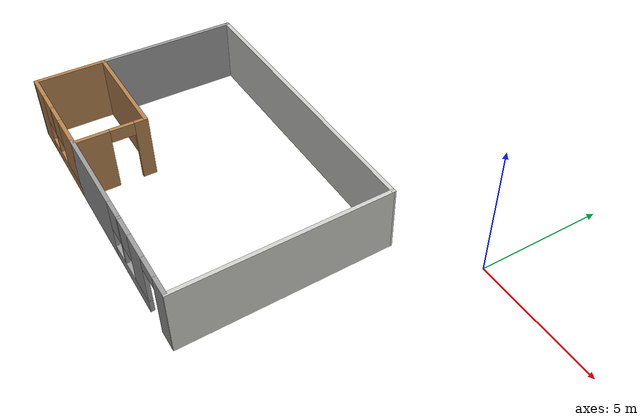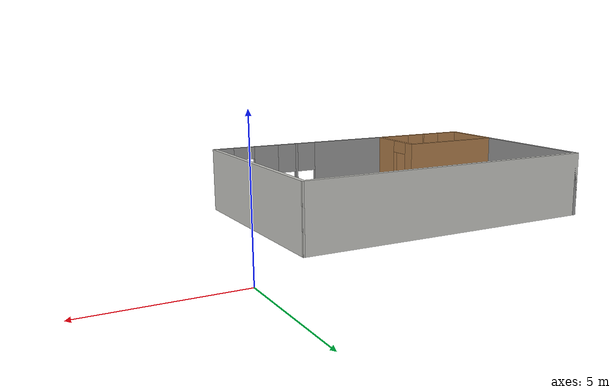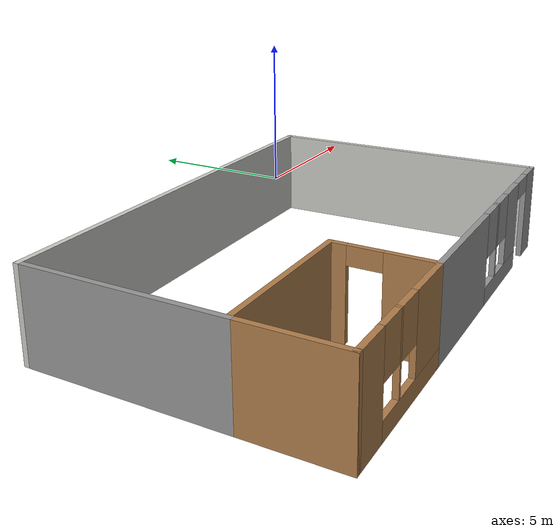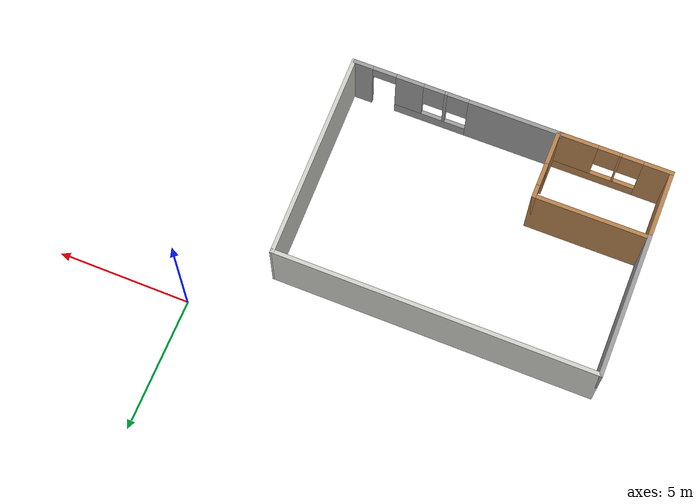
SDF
<?xml version='1.0'?>
<sdf version='1.6'>
  <model name='room'>
    <pose frame=''>-8.3326 -6.01419 0 0 -0 0</pose>
    <link name='Wall_0'>
      <collision name='Wall_0_Collision'>
        <geometry>
          <box>
            <size>11.97 0.15 2.5</size>
          </box>
        </geometry>
        <pose frame=''>0 0 1.25 0 -0 0</pose>
      </collision>
      <visual name='Wall_0_Visual'>
        <pose frame=''>0 0 1.25 0 -0 0</pose>
        <geometry>
          <box>
            <size>11.97 0.15 2.5</size>
          </box>
        </geometry>
        <material>
          <script>
            <uri>file://media/materials/scripts/gazebo.material</uri>
            <name>Gazebo/CeilingTiled</name>
          </script>
          <ambient>1 1 1 1</ambient>
        </material>
        <meta>
          <layer>0</layer>
        </meta>
      </visual>
      <pose frame=''>-0.097397 3.97419 0 0 -0 0</pose>
    </link>
    <link name='Wall_1'>
      <collision name='Wall_1_Collision'>
        <geometry>
          <box>
            <size>8.1 0.15 2.5</size>
          </box>
        </geometry>
        <pose frame=''>0 0 1.25 0 -0 0</pose>
      </collision>
      <visual name='Wall_1_Visual'>
        <pose frame=''>0 0 1.25 0 -0 0</pose>
        <geometry>
          <box>
            <size>8.1 0.15 2.5</size>
          </box>
        </geometry>
        <material>
          <script>
            <uri>file://media/materials/scripts/gazebo.material</uri>
            <name>Gazebo/CeilingTiled</name>
          </script>
          <ambient>1 1 1 1</ambient>
        </material>
        <meta>
          <layer>0</layer>
        </meta>
      </visual>
      <pose frame=''>5.9091 0.000186 0 0 0 -1.54652</pose>
    </link>
    <link name='Wall_21'>
      <collision name='Wall_21_Collision'>
        <geometry>
          <box>
            <size>5.5 0.15 2.5</size>
          </box>
        </geometry>
        <pose frame=''>0 0 1.25 0 -0 0</pose>
      </collision>
      <visual name='Wall_21_Visual'>
        <pose frame=''>0 0 1.25 0 -0 0</pose>
        <geometry>
          <box>
            <size>5.5 0.15 2.5</size>
          </box>
        </geometry>
        <material>
          <script>
            <uri>file://media/materials/scripts/gazebo.material</uri>
            <name>Gazebo/Grey</name>
          </script>
          <ambient>1 1 1 1</ambient>
        </material>
        <meta>
          <layer>0</layer>
        </meta>
      </visual>
      <pose frame=''>-6.0074 1.29919 0 0 0 -1.5708</pose>
    </link>
    <link name='Wall_22'>
      <collision name='Wall_22_Collision'>
        <geometry>
          <box>
            <size>2.75 0.15 2.5</size>
          </box>
        </geometry>
        <pose frame=''>0 0 1.25 0 -0 0</pose>
      </collision>
      <visual name='Wall_22_Visual'>
        <pose frame=''>0 0 1.25 0 -0 0</pose>
        <geometry>
          <box>
            <size>2.75 0.15 2.5</size>
          </box>
        </geometry>
        <material>
          <script>
            <uri>file://media/materials/scripts/gazebo.material</uri>
            <name>Gazebo/Wood</name>
          </script>
          <ambient>1 1 1 1</ambient>
        </material>
        <meta>
          <layer>0</layer>
        </meta>
      </visual>
      <pose frame=''>-6.0074 -2.67581 0 0 0 -1.5708</pose>
    </link>
    <link name='Wall_23'>
      <pose frame=''>-3.9574 -3.97581 0 0 -0 0</pose>
      <visual name='Wall_23_Visual_0'>
        <pose frame=''>-1.5675 0 1.25 0 -0 0</pose>
        <geometry>
          <box>
            <size>1.115 0.15 2.5</size>
          </box>
        </geometry>
        <material>
          <script>
            <uri>file://media/materials/scripts/gazebo.material</uri>
            <name>Gazebo/Wood</name>
          </script>
          <ambient>1 1 1 1</ambient>
        </material>
        <meta>
          <layer>0</layer>
        </meta>
      </visual>
      <collision name='Wall_23_Collision_0'>
        <geometry>
          <box>
            <size>1.115 0.15 2.5</size>
          </box>
        </geometry>
        <pose frame=''>-1.5675 0 1.25 0 -0 0</pose>
      </collision>
      <visual name='Wall_23_Visual_1'>
        <pose frame=''>0.5575 0 0.25 0 -0 0</pose>
        <geometry>
          <box>
            <size>3.135 0.15 0.5</size>
          </box>
        </geometry>
        <material>
          <script>
            <uri>file://media/materials/scripts/gazebo.material</uri>
            <name>Gazebo/Wood</name>
          </script>
          <ambient>1 1 1 1</ambient>
        </material>
        <meta>
          <layer>0</layer>
        </meta>
      </visual>
      <collision name='Wall_23_Collision_1'>
        <geometry>
          <box>
            <size>3.135 0.15 0.5</size>
          </box>
        </geometry>
        <pose frame=''>0.5575 0 0.25 0 -0 0</pose>
      </collision>
      <visual name='Wall_23_Visual_2'>
        <pose frame=''>-0.17 0 1.5 0 -0 0</pose>
        <geometry>
          <box>
            <size>0.079999 0.15 2</size>
          </box>
        </geometry>
        <material>
          <script>
            <uri>file://media/materials/scripts/gazebo.material</uri>
            <name>Gazebo/Wood</name>
          </script>
          <ambient>1 1 1 1</ambient>
        </material>
        <meta>
          <layer>0</layer>
        </meta>
      </visual>
      <collision name='Wall_23_Collision_2'>
        <geometry>
          <box>
            <size>0.079999 0.15 2</size>
          </box>
        </geometry>
        <pose frame=''>-0.17 0 1.5 0 -0 0</pose>
      </collision>
      <visual name='Wall_23_Visual_3'>
        <pose frame=''>1.3975 0 1.5 0 -0 0</pose>
        <geometry>
          <box>
            <size>1.455 0.15 2</size>
          </box>
        </geometry>
        <material>
          <script>
            <uri>file://media/materials/scripts/gazebo.material</uri>
            <name>Gazebo/Wood</name>
          </script>
          <ambient>1 1 1 1</ambient>
        </material>
        <meta>
          <layer>0</layer>
        </meta>
      </visual>
      <collision name='Wall_23_Collision_3'>
        <geometry>
          <box>
            <size>1.455 0.15 2</size>
          </box>
        </geometry>
        <pose frame=''>1.3975 0 1.5 0 -0 0</pose>
      </collision>
      <visual name='Wall_23_Visual_4'>
        <pose frame=''>-0.61 0 1.9 0 -0 0</pose>
        <geometry>
          <box>
            <size>0.8 0.15 1.2</size>
          </box>
        </geometry>
        <material>
          <script>
            <uri>file://media/materials/scripts/gazebo.material</uri>
            <name>Gazebo/Wood</name>
          </script>
          <ambient>1 1 1 1</ambient>
        </material>
        <meta>
          <layer>0</layer>
        </meta>
      </visual>
      <collision name='Wall_23_Collision_4'>
        <geometry>
          <box>
            <size>0.8 0.15 1.2</size>
          </box>
        </geometry>
        <pose frame=''>-0.61 0 1.9 0 -0 0</pose>
      </collision>
      <visual name='Wall_23_Visual_5'>
        <pose frame=''>0.27 0 1.9 0 -0 0</pose>
        <geometry>
          <box>
            <size>0.8 0.15 1.2</size>
          </box>
        </geometry>
        <material>
          <script>
            <uri>file://media/materials/scripts/gazebo.material</uri>
            <name>Gazebo/Wood</name>
          </script>
          <ambient>1 1 1 1</ambient>
        </material>
        <meta>
          <layer>0</layer>
        </meta>
      </visual>
      <collision name='Wall_23_Collision_5'>
        <geometry>
          <box>
            <size>0.8 0.15 1.2</size>
          </box>
        </geometry>
        <pose frame=''>0.27 0 1.9 0 -0 0</pose>
      </collision>
    </link>
    <link name='Wall_24'>
      <pose frame=''>2.0176 -3.97581 0 0 -0 0</pose>
      <visual name='Wall_24_Visual_0'>
        <pose frame=''>-2.2225 0 1.25 0 -0 0</pose>
        <geometry>
          <box>
            <size>3.555 0.15 2.5</size>
          </box>
        </geometry>
        <material>
          <script>
            <uri>file://media/materials/scripts/gazebo.material</uri>
            <name>Gazebo/Grey</name>
          </script>
          <ambient>1 1 1 1</ambient>
        </material>
        <meta>
          <layer>0</layer>
        </meta>
      </visual>
      <collision name='Wall_24_Collision_0'>
        <geometry>
          <box>
            <size>3.555 0.15 2.5</size>
          </box>
        </geometry>
        <pose frame=''>-2.2225 0 1.25 0 -0 0</pose>
      </collision>
      <visual name='Wall_24_Visual_1'>
        <pose frame=''>3.6125 0 1.25 0 -0 0</pose>
        <geometry>
          <box>
            <size>0.775 0.15 2.5</size>
          </box>
        </geometry>
        <material>
          <script>
            <uri>file://media/materials/scripts/gazebo.material</uri>
            <name>Gazebo/Grey</name>
          </script>
          <ambient>1 1 1 1</ambient>
        </material>
        <meta>
          <layer>0</layer>
        </meta>
      </visual>
      <collision name='Wall_24_Collision_1'>
        <geometry>
          <box>
            <size>0.775 0.15 2.5</size>
          </box>
        </geometry>
        <pose frame=''>3.6125 0 1.25 0 -0 0</pose>
      </collision>
      <visual name='Wall_24_Visual_2'>
        <pose frame=''>0.94 0 0.25 0 -0 0</pose>
        <geometry>
          <box>
            <size>2.77 0.15 0.5</size>
          </box>
        </geometry>
        <material>
          <script>
            <uri>file://media/materials/scripts/gazebo.material</uri>
            <name>Gazebo/Grey</name>
          </script>
          <ambient>1 1 1 1</ambient>
        </material>
        <meta>
          <layer>0</layer>
        </meta>
      </visual>
      <collision name='Wall_24_Collision_2'>
        <geometry>
          <box>
            <size>2.77 0.15 0.5</size>
          </box>
        </geometry>
        <pose frame=''>0.94 0 0.25 0 -0 0</pose>
      </collision>
      <visual name='Wall_24_Visual_3'>
        <pose frame=''>0.41 0 1.5 0 -0 0</pose>
        <geometry>
          <box>
            <size>0.11 0.15 2</size>
          </box>
        </geometry>
        <material>
          <script>
            <uri>file://media/materials/scripts/gazebo.material</uri>
            <name>Gazebo/Grey</name>
          </script>
          <ambient>1 1 1 1</ambient>
        </material>
        <meta>
          <layer>0</layer>
        </meta>
      </visual>
      <collision name='Wall_24_Collision_3'>
        <geometry>
          <box>
            <size>0.11 0.15 2</size>
          </box>
        </geometry>
        <pose frame=''>0.41 0 1.5 0 -0 0</pose>
      </collision>
      <visual name='Wall_24_Visual_4'>
        <pose frame=''>1.795 0 1.5 0 -0 0</pose>
        <geometry>
          <box>
            <size>1.06 0.15 2</size>
          </box>
        </geometry>
        <material>
          <script>
            <uri>file://media/materials/scripts/gazebo.material</uri>
            <name>Gazebo/Grey</name>
          </script>
          <ambient>1 1 1 1</ambient>
        </material>
        <meta>
          <layer>0</layer>
        </meta>
      </visual>
      <collision name='Wall_24_Collision_4'>
        <geometry>
          <box>
            <size>1.06 0.15 2</size>
          </box>
        </geometry>
        <pose frame=''>1.795 0 1.5 0 -0 0</pose>
      </collision>
      <visual name='Wall_24_Visual_5'>
        <pose frame=''>-0.045 0 1.9 0 -0 0</pose>
        <geometry>
          <box>
            <size>0.8 0.15 1.2</size>
          </box>
        </geometry>
        <material>
          <script>
            <uri>file://media/materials/scripts/gazebo.material</uri>
            <name>Gazebo/Grey</name>
          </script>
          <ambient>1 1 1 1</ambient>
        </material>
        <meta>
          <layer>0</layer>
        </meta>
      </visual>
      <collision name='Wall_24_Collision_5'>
        <geometry>
          <box>
            <size>0.8 0.15 1.2</size>
          </box>
        </geometry>
        <pose frame=''>-0.045 0 1.9 0 -0 0</pose>
      </collision>
      <visual name='Wall_24_Visual_6'>
        <pose frame=''>0.865 0 1.9 0 -0 0</pose>
        <geometry>
          <box>
            <size>0.8 0.15 1.2</size>
          </box>
        </geometry>
        <material>
          <script>
            <uri>file://media/materials/scripts/gazebo.material</uri>
            <name>Gazebo/Grey</name>
          </script>
          <ambient>1 1 1 1</ambient>
        </material>
        <meta>
          <layer>0</layer>
        </meta>
      </visual>
      <collision name='Wall_24_Collision_6'>
        <geometry>
          <box>
            <size>0.8 0.15 1.2</size>
          </box>
        </geometry>
        <pose frame=''>0.865 0 1.9 0 -0 0</pose>
      </collision>
      <visual name='Wall_24_Visual_7'>
        <pose frame=''>2.775 0 2.25 0 -0 0</pose>
        <geometry>
          <box>
            <size>0.9 0.15 0.5</size>
          </box>
        </geometry>
        <material>
          <script>
            <uri>file://media/materials/scripts/gazebo.material</uri>
            <name>Gazebo/Grey</name>
          </script>
          <ambient>1 1 1 1</ambient>
        </material>
        <meta>
          <layer>0</layer>
        </meta>
      </visual>
      <collision name='Wall_24_Collision_7'>
        <geometry>
          <box>
            <size>0.9 0.15 0.5</size>
          </box>
        </geometry>
        <pose frame=''>2.775 0 2.25 0 -0 0</pose>
      </collision>
    </link>
    <link name='Wall_5'>
      <collision name='Wall_5_Collision'>
        <geometry>
          <box>
            <size>4.25 0.15 2.5</size>
          </box>
        </geometry>
        <pose frame=''>0 0 1.25 0 -0 0</pose>
      </collision>
      <visual name='Wall_5_Visual'>
        <pose frame=''>0 0 1.25 0 -0 0</pose>
        <geometry>
          <box>
            <size>4.25 0.15 2.5</size>
          </box>
        </geometry>
        <material>
          <script>
            <uri>file://media/materials/scripts/gazebo.material</uri>
            <name>Gazebo/Wood</name>
          </script>
          <ambient>1 1 1 1</ambient>
        </material>
        <meta>
          <layer>0</layer>
        </meta>
      </visual>
      <pose frame=''>-3.8574 -1.34581 0 0 -0 0</pose>
    </link>
    <link name='Wall_6'>
      <pose frame=''>-1.8074 -2.62081 0 0 0 -1.5708</pose>
      <visual name='Wall_6_Visual_0'>
        <pose frame=''>-1.0925 0 1.25 0 -0 0</pose>
        <geometry>
          <box>
            <size>0.515 0.15 2.5</size>
          </box>
        </geometry>
        <material>
          <script>
            <uri>file://media/materials/scripts/gazebo.material</uri>
            <name>Gazebo/Wood</name>
          </script>
          <ambient>1 1 1 1</ambient>
        </material>
        <meta>
          <layer>0</layer>
        </meta>
      </visual>
      <collision name='Wall_6_Collision_0'>
        <geometry>
          <box>
            <size>0.515 0.15 2.5</size>
          </box>
        </geometry>
        <pose frame=''>-1.0925 0 1.25 0 -0 0</pose>
      </collision>
      <visual name='Wall_6_Visual_1'>
        <pose frame=''>0.7075 0 1.25 0 -0 0</pose>
        <geometry>
          <box>
            <size>1.285 0.15 2.5</size>
          </box>
        </geometry>
        <material>
          <script>
            <uri>file://media/materials/scripts/gazebo.material</uri>
            <name>Gazebo/Wood</name>
          </script>
          <ambient>1 1 1 1</ambient>
        </material>
        <meta>
          <layer>0</layer>
        </meta>
      </visual>
      <collision name='Wall_6_Collision_1'>
        <geometry>
          <box>
            <size>1.285 0.15 2.5</size>
          </box>
        </geometry>
        <pose frame=''>0.7075 0 1.25 0 -0 0</pose>
      </collision>
      <visual name='Wall_6_Visual_2'>
        <pose frame=''>-0.385 0 2.25 0 -0 0</pose>
        <geometry>
          <box>
            <size>0.9 0.15 0.5</size>
          </box>
        </geometry>
        <material>
          <script>
            <uri>file://media/materials/scripts/gazebo.material</uri>
            <name>Gazebo/Wood</name>
          </script>
          <ambient>1 1 1 1</ambient>
        </material>
        <meta>
          <layer>0</layer>
        </meta>
      </visual>
      <collision name='Wall_6_Collision_2'>
        <geometry>
          <box>
            <size>0.9 0.15 0.5</size>
          </box>
        </geometry>
        <pose frame=''>-0.385 0 2.25 0 -0 0</pose>
      </collision>
    </link>
    <static>1</static>
  </model>
</sdf>
